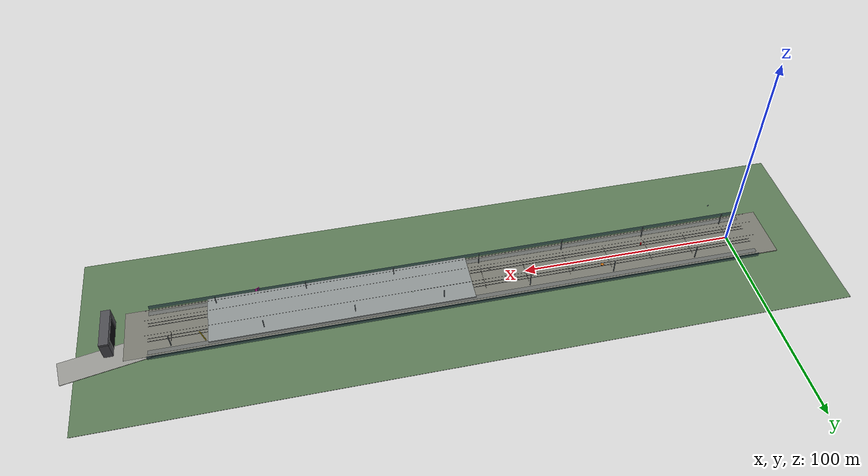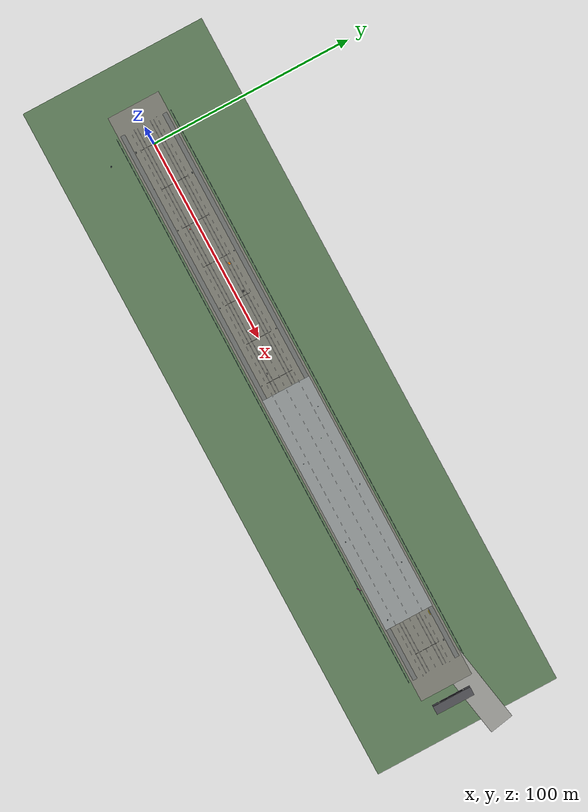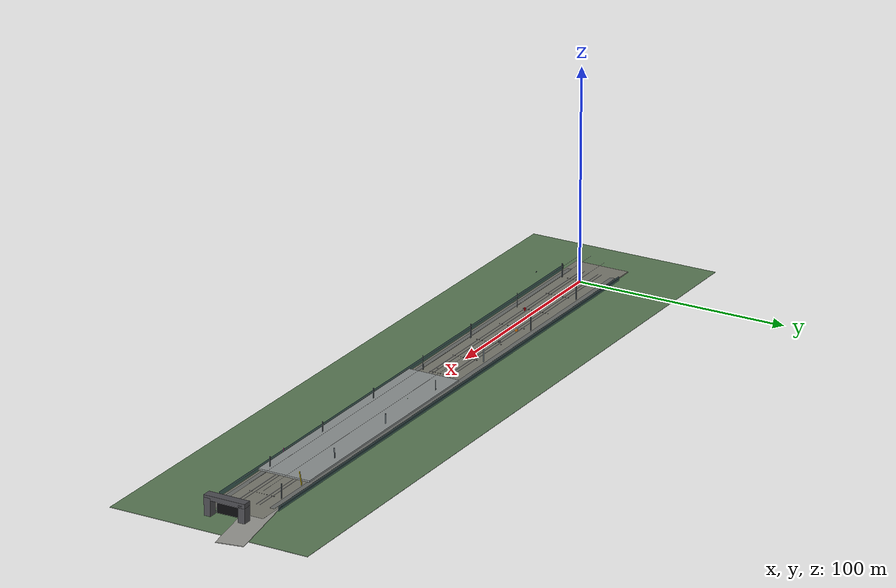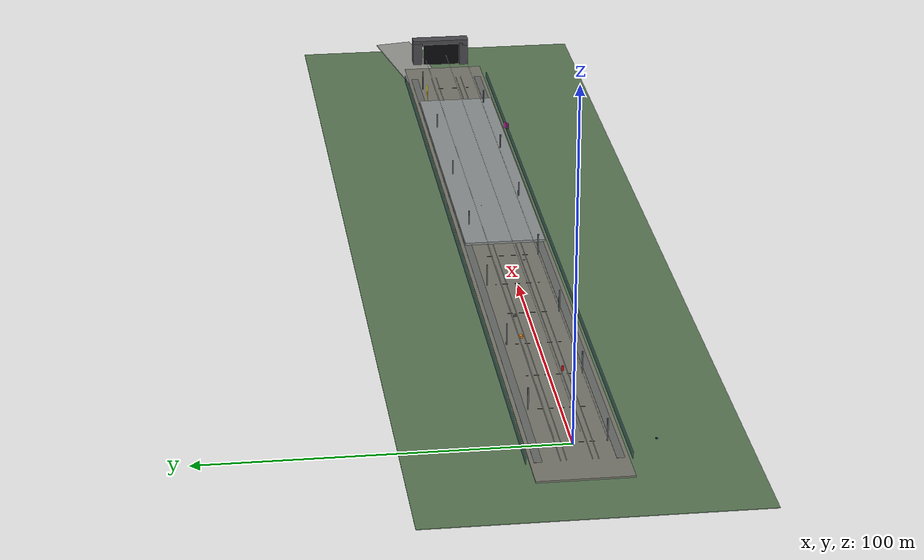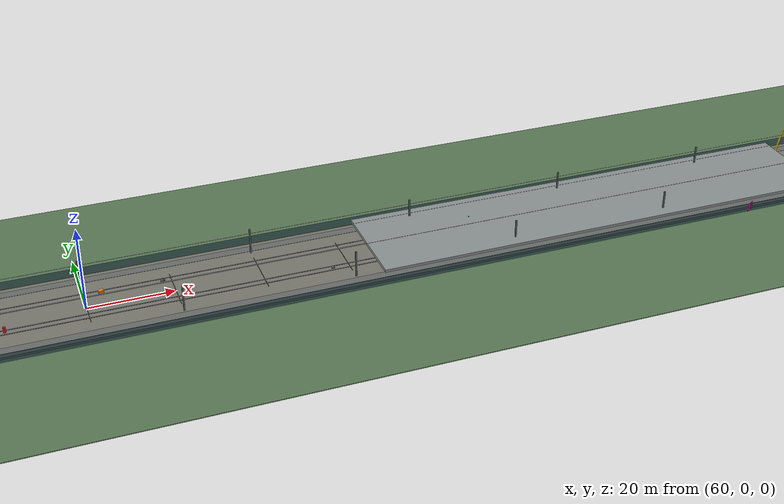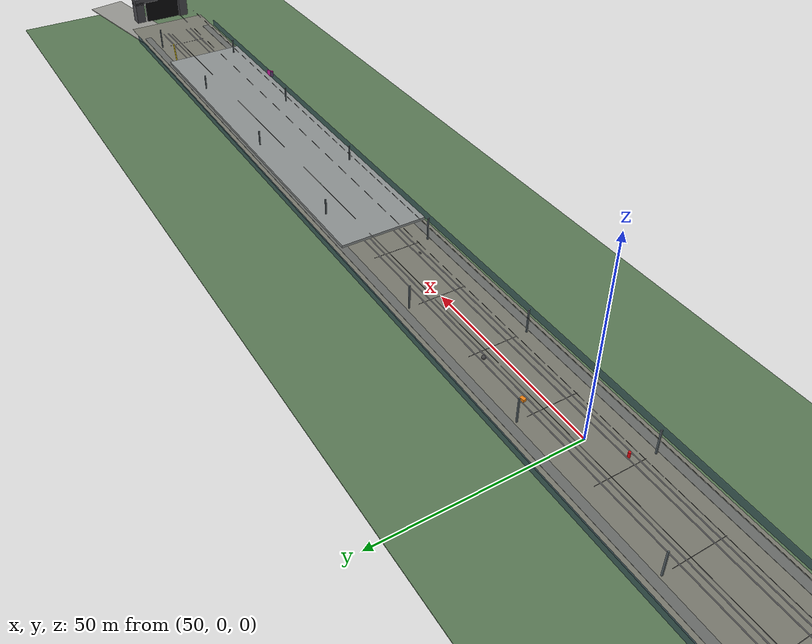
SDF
<?xml version="1.0" ?>
<sdf version="1.9">
  <world name="high_speed_rail_corridor">
    <physics name="1ms" type="ignored">
      <max_step_size>0.004</max_step_size>
      <real_time_factor>1.0</real_time_factor>
    </physics>
    <plugin filename="gz-sim-physics-system" name="gz::sim::systems::Physics"/>
    <plugin filename="gz-sim-user-commands-system" name="gz::sim::systems::UserCommands"/>
    <plugin filename="gz-sim-scene-broadcaster-system" name="gz::sim::systems::SceneBroadcaster"/>
    <plugin filename="gz-sim-imu-system" name="gz::sim::systems::Imu"/>
    <plugin filename="gz-sim-sensors-system" name="gz::sim::systems::Sensors">
      <render_engine>ogre2</render_engine>
    </plugin>

    <scene>
      <ambient>0.66 0.70 0.75 1</ambient>
      <background>0.72 0.80 0.88 1</background>
      <shadows>true</shadows>
    </scene>

    <light name="sun" type="directional">
      <cast_shadows>true</cast_shadows>
      <pose>0 0 100 0 0 0</pose>
      <diffuse>0.92 0.88 0.78 1</diffuse>
      <specular>0.2 0.2 0.2 1</specular>
      <attenuation>
        <range>1000</range>
        <constant>0.9</constant>
        <linear>0.01</linear>
        <quadratic>0.001</quadratic>
      </attenuation>
      <direction>-0.5 0.25 -0.82</direction>
    </light>

    <model name="terrain_embankment_viaduct">
      <static>true</static>
      <link name="terrain_link">
        <collision name="ground_collision">
          <geometry><box><size>340 92 0.2</size></box></geometry>
        </collision>
        <visual name="ground_visual">
          <pose>130 0 -0.11 0 0 0</pose>
          <geometry><box><size>340 92 0.2</size></box></geometry>
          <material><diffuse>0.36 0.48 0.34 1</diffuse></material>
        </visual>
        <visual name="embankment">
          <pose>130 0 0.2 0 0 0</pose>
          <geometry><box><size>300 26 0.6</size></box></geometry>
          <material><diffuse>0.48 0.48 0.44 1</diffuse></material>
        </visual>
        <visual name="viaduct_deck">
          <pose>185 0 2.2 0 0 0</pose>
          <geometry><box><size>118 24 0.7</size></box></geometry>
          <material><diffuse>0.56 0.58 0.58 1</diffuse></material>
        </visual>
      </link>
    </model>

    <model name="double_track_ballastless_railway">
      <static>true</static>
      <link name="track_link">
        <pose>0 0 0.25 0 0 0</pose>
        <visual name="slab_left">
          <pose>130 -4.2 0.05 0 0 0</pose>
          <geometry><box><size>280 4.4 0.35</size></box></geometry>
          <material><diffuse>0.62 0.62 0.60 1</diffuse></material>
        </visual>
        <visual name="slab_right">
          <pose>130 4.2 0.05 0 0 0</pose>
          <geometry><box><size>280 4.4 0.35</size></box></geometry>
          <material><diffuse>0.62 0.62 0.60 1</diffuse></material>
        </visual>
        <visual name="service_walkway_left">
          <pose>130 -10.8 0.18 0 0 0</pose>
          <geometry><box><size>280 2.2 0.25</size></box></geometry>
          <material><diffuse>0.42 0.43 0.42 1</diffuse></material>
        </visual>
        <visual name="service_walkway_right">
          <pose>130 10.8 0.18 0 0 0</pose>
          <geometry><box><size>280 2.2 0.25</size></box></geometry>
          <material><diffuse>0.42 0.43 0.42 1</diffuse></material>
        </visual>
        <visual name="left_track_rail_1">
          <pose>130 -5.0 0.45 0 0 0</pose>
          <geometry><box><size>280 0.14 0.18</size></box></geometry>
          <material><diffuse>0.07 0.07 0.08 1</diffuse><specular>0.6 0.6 0.6 1</specular></material>
        </visual>
        <visual name="left_track_rail_2">
          <pose>130 -3.4 0.45 0 0 0</pose>
          <geometry><box><size>280 0.14 0.18</size></box></geometry>
          <material><diffuse>0.07 0.07 0.08 1</diffuse><specular>0.6 0.6 0.6 1</specular></material>
        </visual>
        <visual name="right_track_rail_1">
          <pose>130 3.4 0.45 0 0 0</pose>
          <geometry><box><size>280 0.14 0.18</size></box></geometry>
          <material><diffuse>0.07 0.07 0.08 1</diffuse><specular>0.6 0.6 0.6 1</specular></material>
        </visual>
        <visual name="right_track_rail_2">
          <pose>130 5.0 0.45 0 0 0</pose>
          <geometry><box><size>280 0.14 0.18</size></box></geometry>
          <material><diffuse>0.07 0.07 0.08 1</diffuse><specular>0.6 0.6 0.6 1</specular></material>
        </visual>
        <visual name="curve_preview_slab">
          <pose>272 8 0.08 0 0 0.18</pose>
          <geometry><box><size>70 12 0.28</size></box></geometry>
          <material><diffuse>0.60 0.60 0.58 1</diffuse></material>
        </visual>
      </link>
    </model>

    <!-- Repeated slab joints / fastener rows. -->
    <model name="slab_joints_and_fasteners">
      <static>true</static>
      <link name="joints">
        <pose>0 0 0.52 0 0 0</pose>
        <visual name="joint_000"><pose>0 0 0 0 0 0</pose><geometry><box><size>0.10 13.0 0.04</size></box></geometry><material><diffuse>0.18 0.18 0.18 1</diffuse></material></visual>
        <visual name="joint_020"><pose>20 0 0 0 0 0</pose><geometry><box><size>0.10 13.0 0.04</size></box></geometry><material><diffuse>0.18 0.18 0.18 1</diffuse></material></visual>
        <visual name="joint_040"><pose>40 0 0 0 0 0</pose><geometry><box><size>0.10 13.0 0.04</size></box></geometry><material><diffuse>0.18 0.18 0.18 1</diffuse></material></visual>
        <visual name="joint_060"><pose>60 0 0 0 0 0</pose><geometry><box><size>0.10 13.0 0.04</size></box></geometry><material><diffuse>0.18 0.18 0.18 1</diffuse></material></visual>
        <visual name="joint_080"><pose>80 0 0 0 0 0</pose><geometry><box><size>0.10 13.0 0.04</size></box></geometry><material><diffuse>0.18 0.18 0.18 1</diffuse></material></visual>
        <visual name="joint_100"><pose>100 0 0 0 0 0</pose><geometry><box><size>0.10 13.0 0.04</size></box></geometry><material><diffuse>0.18 0.18 0.18 1</diffuse></material></visual>
        <visual name="joint_120"><pose>120 0 0 0 0 0</pose><geometry><box><size>0.10 13.0 0.04</size></box></geometry><material><diffuse>0.18 0.18 0.18 1</diffuse></material></visual>
        <visual name="joint_140"><pose>140 0 0 0 0 0</pose><geometry><box><size>0.10 13.0 0.04</size></box></geometry><material><diffuse>0.18 0.18 0.18 1</diffuse></material></visual>
        <visual name="joint_160"><pose>160 0 0 0 0 0</pose><geometry><box><size>0.10 13.0 0.04</size></box></geometry><material><diffuse>0.18 0.18 0.18 1</diffuse></material></visual>
        <visual name="joint_180"><pose>180 0 0 0 0 0</pose><geometry><box><size>0.10 13.0 0.04</size></box></geometry><material><diffuse>0.18 0.18 0.18 1</diffuse></material></visual>
        <visual name="joint_200"><pose>200 0 0 0 0 0</pose><geometry><box><size>0.10 13.0 0.04</size></box></geometry><material><diffuse>0.18 0.18 0.18 1</diffuse></material></visual>
        <visual name="joint_220"><pose>220 0 0 0 0 0</pose><geometry><box><size>0.10 13.0 0.04</size></box></geometry><material><diffuse>0.18 0.18 0.18 1</diffuse></material></visual>
        <visual name="joint_240"><pose>240 0 0 0 0 0</pose><geometry><box><size>0.10 13.0 0.04</size></box></geometry><material><diffuse>0.18 0.18 0.18 1</diffuse></material></visual>
        <visual name="joint_260"><pose>260 0 0 0 0 0</pose><geometry><box><size>0.10 13.0 0.04</size></box></geometry><material><diffuse>0.18 0.18 0.18 1</diffuse></material></visual>
      </link>
    </model>

    <model name="catenary_and_fence_system">
      <static>true</static>
      <link name="infrastructure">
        <pose>0 0 0 0 0 0</pose>
        <visual name="left_fence"><pose>130 -14 1.0 0 0 0</pose><geometry><box><size>280 0.18 2.0</size></box></geometry><material><diffuse>0.20 0.32 0.36 0.72</diffuse></material></visual>
        <visual name="right_fence"><pose>130 14 1.0 0 0 0</pose><geometry><box><size>280 0.18 2.0</size></box></geometry><material><diffuse>0.20 0.32 0.36 0.72</diffuse></material></visual>
        <visual name="catenary_wire_left"><pose>130 -6.8 7.2 0 0 0</pose><geometry><box><size>280 0.06 0.06</size></box></geometry><material><diffuse>0.08 0.08 0.08 1</diffuse></material></visual>
        <visual name="catenary_wire_right"><pose>130 6.8 7.2 0 0 0</pose><geometry><box><size>280 0.06 0.06</size></box></geometry><material><diffuse>0.08 0.08 0.08 1</diffuse></material></visual>
        <visual name="return_wire"><pose>130 0 8.9 0 0 0</pose><geometry><box><size>280 0.05 0.05</size></box></geometry><material><diffuse>0.08 0.08 0.08 1</diffuse></material></visual>
        <visual name="pole_000_l"><pose>0 -9.0 3.5 0 0 0</pose><geometry><box><size>0.35 0.35 7.0</size></box></geometry><material><diffuse>0.36 0.40 0.42 1</diffuse></material></visual>
        <visual name="pole_040_l"><pose>40 -9.0 3.5 0 0 0</pose><geometry><box><size>0.35 0.35 7.0</size></box></geometry><material><diffuse>0.36 0.40 0.42 1</diffuse></material></visual>
        <visual name="pole_080_l"><pose>80 -9.0 3.5 0 0 0</pose><geometry><box><size>0.35 0.35 7.0</size></box></geometry><material><diffuse>0.36 0.40 0.42 1</diffuse></material></visual>
        <visual name="pole_120_l"><pose>120 -9.0 3.5 0 0 0</pose><geometry><box><size>0.35 0.35 7.0</size></box></geometry><material><diffuse>0.36 0.40 0.42 1</diffuse></material></visual>
        <visual name="pole_160_l"><pose>160 -9.0 3.5 0 0 0</pose><geometry><box><size>0.35 0.35 7.0</size></box></geometry><material><diffuse>0.36 0.40 0.42 1</diffuse></material></visual>
        <visual name="pole_200_l"><pose>200 -9.0 3.5 0 0 0</pose><geometry><box><size>0.35 0.35 7.0</size></box></geometry><material><diffuse>0.36 0.40 0.42 1</diffuse></material></visual>
        <visual name="pole_240_l"><pose>240 -9.0 3.5 0 0 0</pose><geometry><box><size>0.35 0.35 7.0</size></box></geometry><material><diffuse>0.36 0.40 0.42 1</diffuse></material></visual>
        <visual name="pole_020_r"><pose>20 9.0 3.5 0 0 0</pose><geometry><box><size>0.35 0.35 7.0</size></box></geometry><material><diffuse>0.36 0.40 0.42 1</diffuse></material></visual>
        <visual name="pole_060_r"><pose>60 9.0 3.5 0 0 0</pose><geometry><box><size>0.35 0.35 7.0</size></box></geometry><material><diffuse>0.36 0.40 0.42 1</diffuse></material></visual>
        <visual name="pole_100_r"><pose>100 9.0 3.5 0 0 0</pose><geometry><box><size>0.35 0.35 7.0</size></box></geometry><material><diffuse>0.36 0.40 0.42 1</diffuse></material></visual>
        <visual name="pole_140_r"><pose>140 9.0 3.5 0 0 0</pose><geometry><box><size>0.35 0.35 7.0</size></box></geometry><material><diffuse>0.36 0.40 0.42 1</diffuse></material></visual>
        <visual name="pole_180_r"><pose>180 9.0 3.5 0 0 0</pose><geometry><box><size>0.35 0.35 7.0</size></box></geometry><material><diffuse>0.36 0.40 0.42 1</diffuse></material></visual>
        <visual name="pole_220_r"><pose>220 9.0 3.5 0 0 0</pose><geometry><box><size>0.35 0.35 7.0</size></box></geometry><material><diffuse>0.36 0.40 0.42 1</diffuse></material></visual>
        <visual name="pole_260_r"><pose>260 9.0 3.5 0 0 0</pose><geometry><box><size>0.35 0.35 7.0</size></box></geometry><material><diffuse>0.36 0.40 0.42 1</diffuse></material></visual>
      </link>
    </model>

    <model name="inspection_fault_targets">
      <static>true</static>
      <link name="faults">
        <pose>0 0 0 0 0 0</pose>
        <visual name="person_on_track"><pose>42 -3.9 1.0 0 0 0</pose><geometry><cylinder><radius>0.32</radius><length>1.8</length></cylinder></geometry><material><diffuse>0.86 0.05 0.08 1</diffuse></material></visual>
        <visual name="foreign_object_box"><pose>64 4.4 0.85 0 0 0.2</pose><geometry><box><size>1.2 0.9 0.7</size></box></geometry><material><diffuse>0.95 0.52 0.08 1</diffuse></material></visual>
        <visual name="rock_or_debris"><pose>78 4.0 0.75 0 0 0</pose><geometry><sphere><radius>0.55</radius></sphere></geometry><material><diffuse>0.25 0.25 0.25 1</diffuse></material></visual>
        <visual name="fastener_missing_marker"><pose>116 -4.2 0.68 0 0 0</pose><geometry><box><size>0.9 0.4 0.08</size></box></geometry><material><diffuse>0.02 0.02 0.02 1</diffuse></material></visual>
        <visual name="fallen_branch"><pose>153 3.7 0.85 0.2 0.1 0.75</pose><geometry><cylinder><radius>0.12</radius><length>3.8</length></cylinder></geometry><material><diffuse>0.18 0.50 0.20 1</diffuse></material></visual>
        <visual name="rail_surface_defect"><pose>188 4.9 0.66 0 0 0</pose><geometry><box><size>2.5 0.28 0.06</size></box></geometry><material><diffuse>0.05 0.05 0.12 1</diffuse></material></visual>
        <visual name="slab_damage"><pose>204 -4.2 0.66 0 0 0</pose><geometry><box><size>1.4 1.2 0.08</size></box></geometry><material><diffuse>0.82 0.74 0.25 1</diffuse></material></visual>
        <visual name="fence_intrusion_damage"><pose>222 -14.0 1.2 0 0 0.55</pose><geometry><box><size>2.2 0.18 2.0</size></box></geometry><material><diffuse>0.78 0.12 0.62 1</diffuse></material></visual>
        <visual name="catenary_pole_abnormal"><pose>246 9.2 3.6 0.0 0.22 0</pose><geometry><box><size>0.32 0.32 7.0</size></box></geometry><material><diffuse>0.95 0.83 0.12 1</diffuse></material></visual>
      </link>
    </model>

    <model name="tunnel_portal">
      <static>true</static>
      <pose>286 0 0 0 0 0</pose>
      <link name="portal">
        <visual name="left_wall"><pose>0 -8 4 0 0 0</pose><geometry><box><size>4 3 8</size></box></geometry><material><diffuse>0.30 0.30 0.32 1</diffuse></material></visual>
        <visual name="right_wall"><pose>0 8 4 0 0 0</pose><geometry><box><size>4 3 8</size></box></geometry><material><diffuse>0.30 0.30 0.32 1</diffuse></material></visual>
        <visual name="top_arch"><pose>0 0 8 0 0 0</pose><geometry><box><size>4 19 2</size></box></geometry><material><diffuse>0.30 0.30 0.32 1</diffuse></material></visual>
        <visual name="dark_opening"><pose>-2 0 4 0 0 0</pose><geometry><box><size>0.15 12 7.2</size></box></geometry><material><diffuse>0.04 0.04 0.05 1</diffuse></material></visual>
      </link>
    </model>

    <model name="inspection_uav_placeholder">
      <pose>0 -22 0.35 0 0 0</pose>
      <link name="base_link">
        <inertial><mass>1.5</mass><inertia><ixx>0.03</ixx><iyy>0.03</iyy><izz>0.05</izz></inertia></inertial>
        <collision name="body_collision"><geometry><box><size>0.55 0.55 0.18</size></box></geometry></collision>
        <visual name="body"><geometry><box><size>0.55 0.55 0.18</size></box></geometry><material><diffuse>0.10 0.14 0.18 1</diffuse></material></visual>
        <visual name="front_camera"><pose>0.34 0 -0.04 0 0 0</pose><geometry><box><size>0.12 0.18 0.08</size></box></geometry><material><diffuse>0.02 0.02 0.02 1</diffuse></material></visual>
        <sensor name="front_rgb_camera" type="camera">
          <pose>0.38 0 -0.02 0 0 0</pose>
          <always_on>true</always_on>
          <update_rate>20</update_rate>
          <topic>/dri/gz/front_camera</topic>
          <camera>
            <horizontal_fov>1.20</horizontal_fov>
            <image><width>1280</width><height>720</height><format>R8G8B8</format></image>
            <clip><near>0.05</near><far>300</far></clip>
          </camera>
        </sensor>
        <sensor name="down_rgb_camera" type="camera">
          <pose>0 0 -0.12 0 1.5708 0</pose>
          <always_on>true</always_on>
          <update_rate>15</update_rate>
          <topic>/dri/gz/down_camera</topic>
          <camera>
            <horizontal_fov>1.05</horizontal_fov>
            <image><width>640</width><height>480</height><format>R8G8B8</format></image>
            <clip><near>0.05</near><far>120</far></clip>
          </camera>
        </sensor>
        <sensor name="imu" type="imu">
          <always_on>true</always_on>
          <update_rate>250</update_rate>
          <topic>/dri/gz/imu</topic>
        </sensor>
      </link>
    </model>
  </world>
</sdf>
